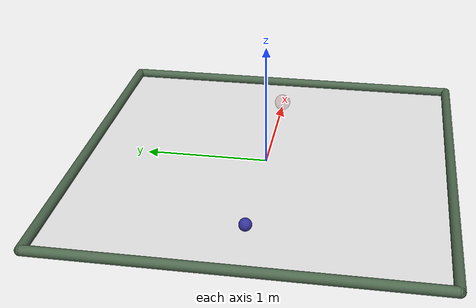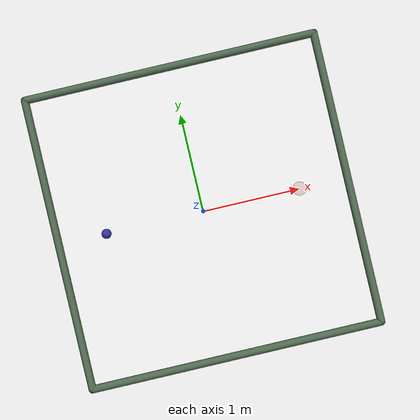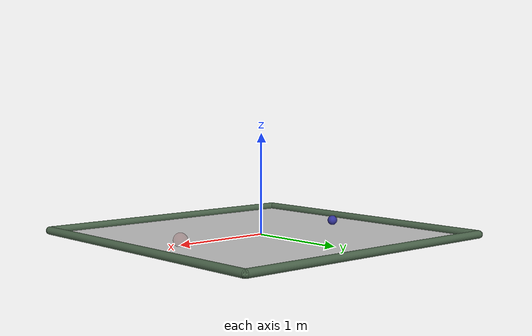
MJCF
<!-- Author + Copyright (C) Aravind Rajeswaran, rajeswaran.aravind@gmail.com.
See LICENSE file for legal notices. LICENSE must be kept together with this file.
modified by klowrey
-->
<mujoco model="PointMass">
    <compiler inertiafromgeom="true" angle="radian" />
    <default>
        <joint armature="0.01" damping="0.1" limited="true"/>
        <geom contype="0" friction="1 0.1 0.1" rgba="0.7 0.7 0 1"/>
        <motor ctrllimited="true" ctrlrange="-1.0 1.0" />
    </default>
    <option gravity="0 0 0" timestep="0.02"/>

    <asset>
        <texture type="skybox" builtin="gradient" rgb1=".1 .12 .15" rgb2="0 0 0" width="100" height="100"/>
        <texture builtin="flat" height="100" name="grayplane" rgb1="0.4 0.4 0.4" rgb2=".1 0.15 0.2" type="2d" width="100"/>
        <material name="grayfloor" reflectance="0" shininess="0" specular="1" texture="grayplane"/>
    </asset>

    <worldbody>
        <!-- Arena -->
        <geom conaffinity="0" contype="0" name="ground" pos="0 0 0" rgba="0.9 0.9 0.9 1" size="1.5 1.5 .05" type="plane" material="grayfloor"/>
        <geom conaffinity="0" fromto="-1.5 -1.5 .02 1.5 -1.5 .02" name="sideS" rgba="0.3 0.4 0.3 1.0" size=".04" type="capsule" mass="0.1"/>
        <geom conaffinity="0" fromto=" 1.5 -1.5 .02 1.5  1.5 .02" name="sideE" rgba="0.3 0.4 0.3 1.0" size=".04" type="capsule" mass="0.1"/>
        <geom conaffinity="0" fromto="-1.5  1.5 .02 1.5  1.5 .02" name="sideN" rgba="0.3 0.4 0.3 1.0" size=".04" type="capsule" mass="0.1"/>
        <geom conaffinity="0" fromto="-1.5 -1.5 .02 -1.5 1.5 .02" name="sideW" rgba="0.3 0.4 0.3 1.0" size=".04" type="capsule" mass="0.1"/>

        <!-- Agent -->
        <body name="agent" pos="-1 0 .05">
            <joint axis="1 0 0" name="agent_x" pos="0 0 0" range="-1.4 1.4" stiffness="0" type="slide" ref="-1"/>
            <joint axis="0 1 0" name="agent_y" pos="0 0 0" range="-1.4 1.4" stiffness="0" type="slide"/>
            <geom conaffinity="1" contype="1" name="agent" pos="0 0 0" rgba="0.2 0.2 0.6 1" size=".05" type="sphere"/>
        </body>

        <!-- Target -->
        <body name="target" pos="1 0 .05">
            <joint axis="1 0 0" name="target_x" pos="0 0 0" range="-1.4 1.4" stiffness="0" type="slide" ref="1"/>
            <joint axis="0 1 0" name="target_y" pos="0 0 0" range="-1.4 1.4" stiffness="0" type="slide"/>
            <geom conaffinity="0" contype="0" name="target" pos="0 0 0" rgba="0.6 0.2 0.2 0.2" size=".07" type="sphere"/>
        </body>

    </worldbody>

    <actuator>
        <motor gear="1.0" joint="agent_x"/>
        <motor gear="1.0" joint="agent_y"/>
    </actuator>

</mujoco>
